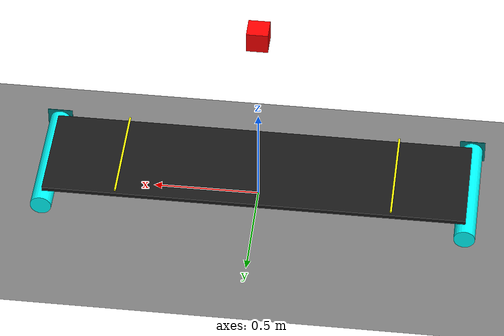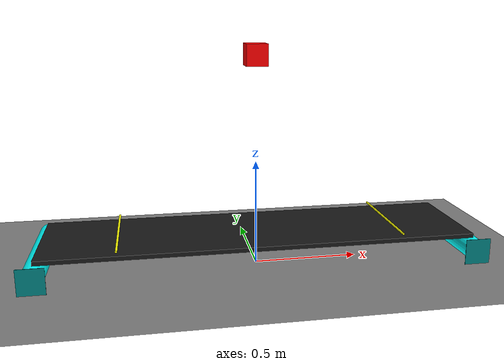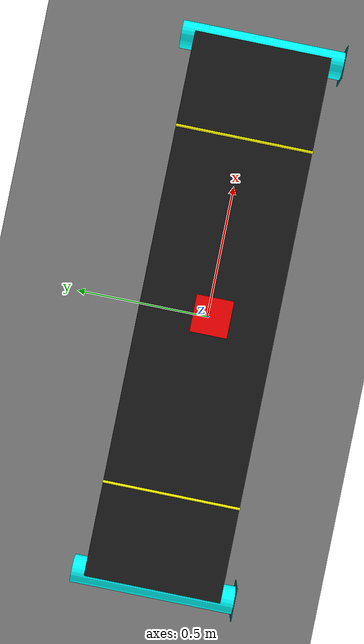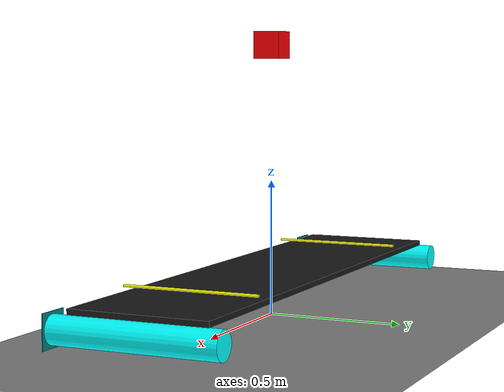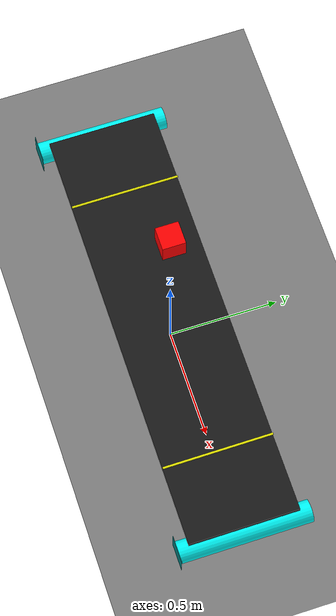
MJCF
<mujoco>
  <worldbody>
    <camera name="top_conveyor" pos="0 0 5" xyaxes="1 0 0 0 1 0" />

    <body>
      <geom type="plane" size="2 2 0.01"/>
    </body>

    <body name="roller1" euler="90 0 0" pos="-1 0 0.1">
      <geom type="cylinder" size="0.05 0.3" rgba="0 1 1 1"/>
      <joint name="roller1_joint" type="hinge" damping="0.01"/>
      <geom type="box" size="0.06 0.06 0.001" pos="0 0 0.301" rgba="0 .5 .5 1"/>
      <site name="site1" type="sphere" rgba="1 0 0 0" size="0.01" pos="0 0.05 0"/>
    </body>

    <body name="roller2" euler="90 0 0" pos="1 0 0.1">
      <geom type="cylinder" size="0.05 0.3" rgba="0 1 1 1"/>
      <joint name="roller2_joint" type="hinge" damping="0.01"/>
      <geom type="box" size="0.06 0.06 0.001" pos="0 0 0.301" rgba="0 .5 .5 1"/>
    </body>

    <body name="belt" pos="0 0 0.16">
      <geom type="box" size="1 0.25 0.01" rgba="0.1 0.1 0.1 1" friction="0.001 0.005 0.001"/>
      <site name="belt_motion_touch_sensor_site" type="box" size="1 0.25 0.01" rgba="0 0 0 0"/>

      <body name="left_light_sensor" pos="-0.65 0 0.03">
        <geom type="cylinder" size="0.005 0.25" euler="90 0 0" rgba="1 1 0 1" contype="0" conaffinity="0"/>
      </body>

      <body name="right_light_sensor" pos="0.65 0 0.03">
        <geom type="cylinder" size="0.005 0.25" euler="90 0 0" rgba="1 1 0 1" contype="0" conaffinity="0"/>
      </body>
    </body>

    <body name="red_box" pos="0 0 1">
      <geom type="box" size="0.05 0.05 0.05" rgba="1 0 0 1" friction="0.001 0.005 0.001"/>
      <joint name="box_joint" type="free"/>
    </body>
  </worldbody>

  <equality>
  <joint joint1="roller1_joint" joint2="roller2_joint"/>
  </equality>

  <actuator>
    <velocity name="roller_vel" joint="roller1_joint" ctrlrange="-20 20"/>
    <velocity name="box_vel" joint="box_joint" ctrlrange="-20 20"/>
  </actuator>

  <sensor>
    <velocimeter site="site1"/>
    <touch site="belt_motion_touch_sensor_site"/>
    <normal body1="right_light_sensor" body2="red_box"/>
    <normal body1="left_light_sensor" body2="red_box"/>
  </sensor>

</mujoco>
